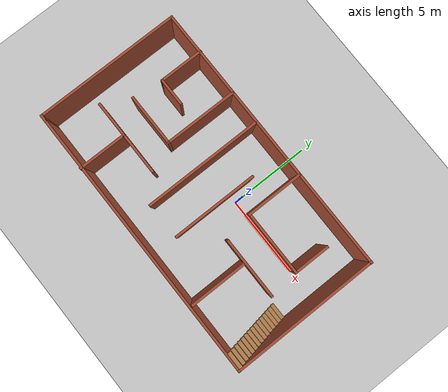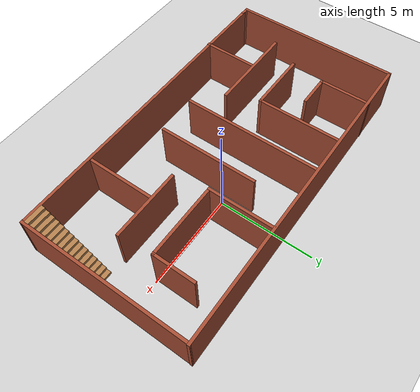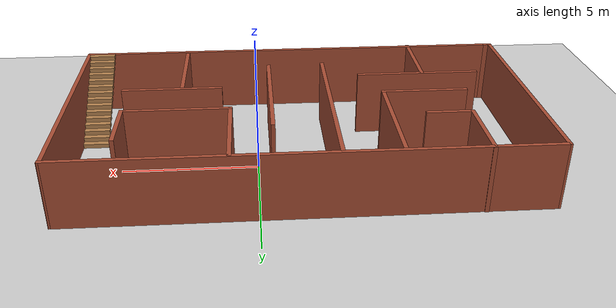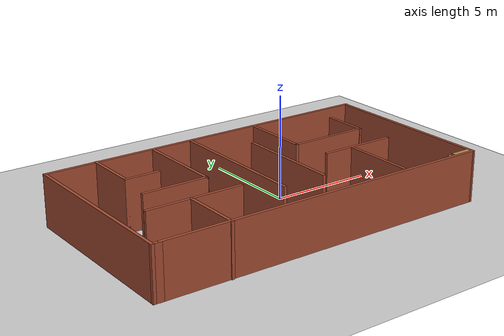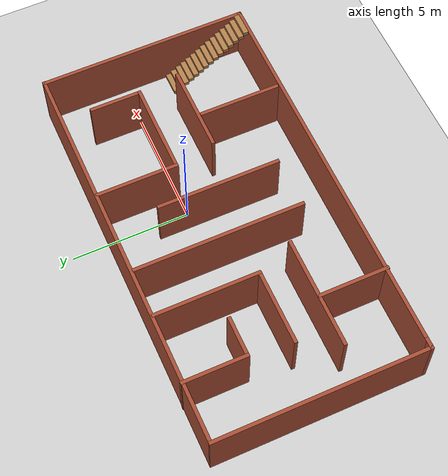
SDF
<sdf version="1.7">
 <world name="default">
  <light name="sun" type="directional">
   <pose>0 0 10 0 -0 0</pose>
   <diffuse>0.8 0.8 0.8 1</diffuse>
   <specular>0.2 0.2 0.2 1</specular>
   <attenuation>
    <range>1000</range>
    <constant>0.9</constant>
    <linear>0.01</linear>
    <quadratic>0.001</quadratic>
   </attenuation>
   <direction>-0.5 0.1 -0.9</direction>
   <spot><inner_angle>0</inner_angle><outer_angle>0</outer_angle><falloff>0</falloff></spot>
  </light>
  <model name="ground_plane">
   <static>1</static>
   <link name="link">
    <collision name="collision">
     <geometry><plane><normal>0 0 1</normal><size>100 100</size></plane></geometry>
     <surface>
      <contact><collide_bitmask>65535</collide_bitmask></contact>
      <friction><ode><mu>100</mu><mu2>50</mu2></ode></friction>
     </surface>
    </collision>
    <visual name="visual">
     <cast_shadows>0</cast_shadows>
     <geometry><plane><normal>0 0 1</normal><size>100 100</size></plane></geometry>
     <material>
      <script><uri>file://media/materials/scripts/gazebo.material</uri><name>Gazebo/Grey</name></script>
     </material>
    </visual>
   </link>
  </model>
  <gravity>0 0 -9.8</gravity>
  <magnetic_field>6e-06 2.3e-05 -4.2e-05</magnetic_field>
  <atmosphere type="adiabatic"/>
  <physics type="ode">
   <max_step_size>0.001</max_step_size>
   <real_time_factor>1</real_time_factor>
   <real_time_update_rate>1000</real_time_update_rate>
  </physics>
  <scene><ambient>0.4 0.4 0.4 1</ambient><background>0.7 0.7 0.7 1</background><shadows>1</shadows></scene>
  <spherical_coordinates>
   <surface_model>EARTH_WGS84</surface_model>
   <latitude_deg>0</latitude_deg>
   <longitude_deg>0</longitude_deg>
   <elevation>0</elevation>
   <heading_deg>0</heading_deg>
  </spherical_coordinates>
  <model name="my_wall.wourlds">
   <pose>-1.61776 -1.0325 0 0 -0 0</pose>
   <link name="Stairs_0">
    <visual name="Stairs_0_Visual_0">
     <pose>7.91561 -0.975412 0.083333 0 -0 0</pose>
     <geometry><box><size>1 0.233333 0.166667</size></box></geometry>
     <material>
      <script><uri>file://media/materials/scripts/gazebo.material</uri><name>Gazebo/Wood</name></script>
      <ambient>1 1 1 1</ambient>
     </material>
     <meta><layer>0</layer></meta>
    </visual>
    <collision name="Stairs_0_Collision_0">
     <geometry><box><size>1 0.233333 0.166667</size></box></geometry>
     <pose>7.91561 -0.975412 0.083333 0 -0 0</pose>
    </collision>
    <visual name="Stairs_0_Visual_1">
     <pose>7.91561 -1.20874 0.25 0 -0 0</pose>
     <geometry><box><size>1 0.233333 0.166667</size></box></geometry>
     <material>
      <script><uri>file://media/materials/scripts/gazebo.material</uri><name>Gazebo/Wood</name></script>
      <ambient>1 1 1 1</ambient>
     </material>
     <meta><layer>0</layer></meta>
    </visual>
    <collision name="Stairs_0_Collision_1">
     <geometry><box><size>1 0.233333 0.166667</size></box></geometry>
     <pose>7.91561 -1.20874 0.25 0 -0 0</pose>
    </collision>
    <visual name="Stairs_0_Visual_2">
     <pose>7.91561 -1.44208 0.416667 0 -0 0</pose>
     <geometry><box><size>1 0.233333 0.166667</size></box></geometry>
     <material>
      <script><uri>file://media/materials/scripts/gazebo.material</uri><name>Gazebo/Wood</name></script>
      <ambient>1 1 1 1</ambient>
     </material>
     <meta><layer>0</layer></meta>
    </visual>
    <collision name="Stairs_0_Collision_2">
     <geometry><box><size>1 0.233333 0.166667</size></box></geometry>
     <pose>7.91561 -1.44208 0.416667 0 -0 0</pose>
    </collision>
    <visual name="Stairs_0_Visual_3">
     <pose>7.91561 -1.67541 0.583333 0 -0 0</pose>
     <geometry><box><size>1 0.233333 0.166667</size></box></geometry>
     <material>
      <script><uri>file://media/materials/scripts/gazebo.material</uri><name>Gazebo/Wood</name></script>
      <ambient>1 1 1 1</ambient>
     </material>
     <meta><layer>0</layer></meta>
    </visual>
    <collision name="Stairs_0_Collision_3">
     <geometry><box><size>1 0.233333 0.166667</size></box></geometry>
     <pose>7.91561 -1.67541 0.583333 0 -0 0</pose>
    </collision>
    <visual name="Stairs_0_Visual_4">
     <pose>7.91561 -1.90875 0.75 0 -0 0</pose>
     <geometry><box><size>1 0.233333 0.166667</size></box></geometry>
     <material>
      <script><uri>file://media/materials/scripts/gazebo.material</uri><name>Gazebo/Wood</name></script>
      <ambient>1 1 1 1</ambient>
     </material>
     <meta><layer>0</layer></meta>
    </visual>
    <collision name="Stairs_0_Collision_4">
     <geometry><box><size>1 0.233333 0.166667</size></box></geometry>
     <pose>7.91561 -1.90875 0.75 0 -0 0</pose>
    </collision>
    <visual name="Stairs_0_Visual_5">
     <pose>7.91561 -2.14208 0.916667 0 -0 0</pose>
     <geometry><box><size>1 0.233333 0.166667</size></box></geometry>
     <material>
      <script><uri>file://media/materials/scripts/gazebo.material</uri><name>Gazebo/Wood</name></script>
      <ambient>1 1 1 1</ambient>
     </material>
     <meta><layer>0</layer></meta>
    </visual>
    <collision name="Stairs_0_Collision_5">
     <geometry><box><size>1 0.233333 0.166667</size></box></geometry>
     <pose>7.91561 -2.14208 0.916667 0 -0 0</pose>
    </collision>
    <visual name="Stairs_0_Visual_6">
     <pose>7.91561 -2.37541 1.08333 0 -0 0</pose>
     <geometry><box><size>1 0.233333 0.166667</size></box></geometry>
     <material>
      <script><uri>file://media/materials/scripts/gazebo.material</uri><name>Gazebo/Wood</name></script>
      <ambient>1 1 1 1</ambient>
     </material>
     <meta><layer>0</layer></meta>
    </visual>
    <collision name="Stairs_0_Collision_6">
     <geometry><box><size>1 0.233333 0.166667</size></box></geometry>
     <pose>7.91561 -2.37541 1.08333 0 -0 0</pose>
    </collision>
    <visual name="Stairs_0_Visual_7">
     <pose>7.91561 -2.60875 1.25 0 -0 0</pose>
     <geometry><box><size>1 0.233333 0.166667</size></box></geometry>
     <material>
      <script><uri>file://media/materials/scripts/gazebo.material</uri><name>Gazebo/Wood</name></script>
      <ambient>1 1 1 1</ambient>
     </material>
     <meta><layer>0</layer></meta>
    </visual>
    <collision name="Stairs_0_Collision_7">
     <geometry><box><size>1 0.233333 0.166667</size></box></geometry>
     <pose>7.91561 -2.60875 1.25 0 -0 0</pose>
    </collision>
    <visual name="Stairs_0_Visual_8">
     <pose>7.91561 -2.84208 1.41667 0 -0 0</pose>
     <geometry><box><size>1 0.233333 0.166667</size></box></geometry>
     <material>
      <script><uri>file://media/materials/scripts/gazebo.material</uri><name>Gazebo/Wood</name></script>
      <ambient>1 1 1 1</ambient>
     </material>
     <meta><layer>0</layer></meta>
    </visual>
    <collision name="Stairs_0_Collision_8">
     <geometry><box><size>1 0.233333 0.166667</size></box></geometry>
     <pose>7.91561 -2.84208 1.41667 0 -0 0</pose>
    </collision>
    <visual name="Stairs_0_Visual_9">
     <pose>7.91561 -3.07541 1.58333 0 -0 0</pose>
     <geometry><box><size>1 0.233333 0.166667</size></box></geometry>
     <material>
      <script><uri>file://media/materials/scripts/gazebo.material</uri><name>Gazebo/Wood</name></script>
      <ambient>1 1 1 1</ambient>
     </material>
     <meta><layer>0</layer></meta>
    </visual>
    <collision name="Stairs_0_Collision_9">
     <geometry><box><size>1 0.233333 0.166667</size></box></geometry>
     <pose>7.91561 -3.07541 1.58333 0 -0 0</pose>
    </collision>
    <visual name="Stairs_0_Visual_10">
     <pose>7.91561 -3.30875 1.75 0 -0 0</pose>
     <geometry><box><size>1 0.233333 0.166667</size></box></geometry>
     <material>
      <script><uri>file://media/materials/scripts/gazebo.material</uri><name>Gazebo/Wood</name></script>
      <ambient>1 1 1 1</ambient>
     </material>
     <meta><layer>0</layer></meta>
    </visual>
    <collision name="Stairs_0_Collision_10">
     <geometry><box><size>1 0.233333 0.166667</size></box></geometry>
     <pose>7.91561 -3.30875 1.75 0 -0 0</pose>
    </collision>
    <visual name="Stairs_0_Visual_11">
     <pose>7.91561 -3.54208 1.91667 0 -0 0</pose>
     <geometry><box><size>1 0.233333 0.166667</size></box></geometry>
     <material>
      <script><uri>file://media/materials/scripts/gazebo.material</uri><name>Gazebo/Wood</name></script>
      <ambient>1 1 1 1</ambient>
     </material>
     <meta><layer>0</layer></meta>
    </visual>
    <collision name="Stairs_0_Collision_11">
     <geometry><box><size>1 0.233333 0.166667</size></box></geometry>
     <pose>7.91561 -3.54208 1.91667 0 -0 0</pose>
    </collision>
    <visual name="Stairs_0_Visual_12">
     <pose>7.91561 -3.77541 2.08333 0 -0 0</pose>
     <geometry><box><size>1 0.233333 0.166667</size></box></geometry>
     <material>
      <script><uri>file://media/materials/scripts/gazebo.material</uri><name>Gazebo/Wood</name></script>
      <ambient>1 1 1 1</ambient>
     </material>
     <meta><layer>0</layer></meta>
    </visual>
    <collision name="Stairs_0_Collision_12">
     <geometry><box><size>1 0.233333 0.166667</size></box></geometry>
     <pose>7.91561 -3.77541 2.08333 0 -0 0</pose>
    </collision>
    <visual name="Stairs_0_Visual_13">
     <pose>7.91561 -4.00875 2.25 0 -0 0</pose>
     <geometry><box><size>1 0.233333 0.166667</size></box></geometry>
     <material>
      <script><uri>file://media/materials/scripts/gazebo.material</uri><name>Gazebo/Wood</name></script>
      <ambient>1 1 1 1</ambient>
     </material>
     <meta><layer>0</layer></meta>
    </visual>
    <collision name="Stairs_0_Collision_13">
     <geometry><box><size>1 0.233333 0.166667</size></box></geometry>
     <pose>7.91561 -4.00875 2.25 0 -0 0</pose>
    </collision>
    <visual name="Stairs_0_Visual_14">
     <pose>7.91561 -4.24208 2.41667 0 -0 0</pose>
     <geometry><box><size>1 0.233333 0.166667</size></box></geometry>
     <material>
      <script><uri>file://media/materials/scripts/gazebo.material</uri><name>Gazebo/Wood</name></script>
      <ambient>1 1 1 1</ambient>
     </material>
     <meta><layer>0</layer></meta>
    </visual>
    <collision name="Stairs_0_Collision_14">
     <geometry><box><size>1 0.233333 0.166667</size></box></geometry>
     <pose>7.91561 -4.24208 2.41667 0 -0 0</pose>
    </collision>
   </link>
   <link name="Wall_0">
    <collision name="Wall_0_Collision">
     <geometry><box><size>17 0.15 2.5</size></box></geometry>
     <pose>0 0 1.25 0 -0 0</pose>
    </collision>
    <visual name="Wall_0_Visual">
     <pose>0 0 1.25 0 -0 0</pose>
     <geometry><box><size>17 0.15 2.5</size></box></geometry>
     <material>
      <script><uri>file://media/materials/scripts/gazebo.material</uri><name>Gazebo/Bricks</name></script>
      <ambient>1 1 1 1</ambient>
     </material>
     <meta><layer>0</layer></meta>
    </visual>
    <pose>0.035504 4.43577 0 0 -0 0</pose>
   </link>
   <link name="Wall_1">
    <collision name="Wall_1_Collision">
     <geometry><box><size>9 0.15 2.5</size></box></geometry>
     <pose>0 0 1.25 0 -0 0</pose>
    </collision>
    <visual name="Wall_1_Visual">
     <pose>0 0 1.25 0 -0 0</pose>
     <geometry><box><size>9 0.15 2.5</size></box></geometry>
     <material>
      <script><uri>file://media/materials/scripts/gazebo.material</uri><name>Gazebo/Bricks</name></script>
      <ambient>1 1 1 1</ambient>
     </material>
     <meta><layer>0</layer></meta>
    </visual>
    <pose>8.4605 0.010768 0 0 -0 -1.56755</pose>
   </link>
   <link name="Wall_10">
    <collision name="Wall_10_Collision">
     <geometry><box><size>1.75 0.15 2.5</size></box></geometry>
     <pose>0 0 1.25 0 -0 0</pose>
    </collision>
    <visual name="Wall_10_Visual">
     <pose>0 0 1.25 0 -0 0</pose>
     <geometry><box><size>1.75 0.15 2.5</size></box></geometry>
     <material>
      <script><uri>file://media/materials/scripts/gazebo.material</uri><name>Gazebo/Bricks</name></script>
      <ambient>1 1 1 1</ambient>
     </material>
     <meta><layer>0</layer></meta>
    </visual>
    <pose>-5.19274 1.85929 0 0 -0 0</pose>
   </link>
   <link name="Wall_14">
    <collision name="Wall_14_Collision">
     <geometry><box><size>7.25 0.15 2.5</size></box></geometry>
     <pose>0 0 1.25 0 -0 0</pose>
    </collision>
    <visual name="Wall_14_Visual">
     <pose>0 0 1.25 0 -0 0</pose>
     <geometry><box><size>7.25 0.15 2.5</size></box></geometry>
     <material>
      <script><uri>file://media/materials/scripts/gazebo.material</uri><name>Gazebo/Bricks</name></script>
      <ambient>1 1 1 1</ambient>
     </material>
     <meta><layer>0</layer></meta>
    </visual>
    <pose>-1.06959 0.774174 0 0 -0 -1.5708</pose>
   </link>
   <link name="Wall_16">
    <collision name="Wall_16_Collision">
     <geometry><box><size>4.75 0.15 2.5</size></box></geometry>
     <pose>0 0 1.25 0 -0 0</pose>
    </collision>
    <visual name="Wall_16_Visual">
     <pose>0 0 1.25 0 -0 0</pose>
     <geometry><box><size>4.75 0.15 2.5</size></box></geometry>
     <material>
      <script><uri>file://media/materials/scripts/gazebo.material</uri><name>Gazebo/Bricks</name></script>
      <ambient>1 1 1 1</ambient>
     </material>
     <meta><layer>0</layer></meta>
    </visual>
    <pose>-4.73478 -1.58718 0 0 -0 0</pose>
   </link>
   <link name="Wall_18">
    <collision name="Wall_18_Collision">
     <geometry><box><size>3 0.15 2.5</size></box></geometry>
     <pose>0 0 1.25 0 -0 0</pose>
    </collision>
    <visual name="Wall_18_Visual">
     <pose>0 0 1.25 0 -0 0</pose>
     <geometry><box><size>3 0.15 2.5</size></box></geometry>
     <material>
      <script><uri>file://media/materials/scripts/gazebo.material</uri><name>Gazebo/Bricks</name></script>
      <ambient>1 1 1 1</ambient>
     </material>
     <meta><layer>0</layer></meta>
    </visual>
    <pose>-4.91207 -3.03429 0 0 -0 -1.5708</pose>
   </link>
   <link name="Wall_2">
    <collision name="Wall_2_Collision">
     <geometry><box><size>16.75 0.15 2.5</size></box></geometry>
     <pose>0 0 1.25 0 -0 0</pose>
    </collision>
    <visual name="Wall_2_Visual">
     <pose>0 0 1.25 0 -0 0</pose>
     <geometry><box><size>16.75 0.15 2.5</size></box></geometry>
     <material>
      <script><uri>file://media/materials/scripts/gazebo.material</uri><name>Gazebo/Bricks</name></script>
      <ambient>1 1 1 1</ambient>
     </material>
     <meta><layer>0</layer></meta>
    </visual>
    <pose>0.174879 -4.41423 0 0 -0 3.14159</pose>
   </link>
   <link name="Wall_20">
    <collision name="Wall_20_Collision">
     <geometry><box><size>5.25 0.15 2.5</size></box></geometry>
     <pose>0 0 1.25 0 -0 0</pose>
    </collision>
    <visual name="Wall_20_Visual">
     <pose>0 0 1.25 0 -0 0</pose>
     <geometry><box><size>5.25 0.15 2.5</size></box></geometry>
     <material>
      <script><uri>file://media/materials/scripts/gazebo.material</uri><name>Gazebo/Bricks</name></script>
      <ambient>1 1 1 1</ambient>
     </material>
     <meta><layer>0</layer></meta>
    </visual>
    <pose>1.09488 -0.158445 0 0 -0 -1.5708</pose>
   </link>
   <link name="Wall_22">
    <collision name="Wall_22_Collision">
     <geometry><box><size>3.5 0.15 2.5</size></box></geometry>
     <pose>0 0 1.25 0 -0 0</pose>
    </collision>
    <visual name="Wall_22_Visual">
     <pose>0 0 1.25 0 -0 0</pose>
     <geometry><box><size>3.5 0.15 2.5</size></box></geometry>
     <material>
      <script><uri>file://media/materials/scripts/gazebo.material</uri><name>Gazebo/Bricks</name></script>
      <ambient>1 1 1 1</ambient>
     </material>
     <meta><layer>0</layer></meta>
    </visual>
    <pose>2.56876 2.70695 0 0 -0 -1.5708</pose>
   </link>
   <link name="Wall_23">
    <collision name="Wall_23_Collision">
     <geometry><box><size>4 0.15 2.5</size></box></geometry>
     <pose>0 0 1.25 0 -0 0</pose>
    </collision>
    <visual name="Wall_23_Visual">
     <pose>0 0 1.25 0 -0 0</pose>
     <geometry><box><size>4 0.15 2.5</size></box></geometry>
     <material>
      <script><uri>file://media/materials/scripts/gazebo.material</uri><name>Gazebo/Bricks</name></script>
      <ambient>1 1 1 1</ambient>
     </material>
     <meta><layer>0</layer></meta>
    </visual>
    <pose>4.49376 1.03195 0 0 -0 0</pose>
   </link>
   <link name="Wall_24">
    <collision name="Wall_24_Collision">
     <geometry><box><size>2.25 0.15 2.5</size></box></geometry>
     <pose>0 0 1.25 0 -0 0</pose>
    </collision>
    <visual name="Wall_24_Visual">
     <pose>0 0 1.25 0 -0 0</pose>
     <geometry><box><size>2.25 0.15 2.5</size></box></geometry>
     <material>
      <script><uri>file://media/materials/scripts/gazebo.material</uri><name>Gazebo/Bricks</name></script>
      <ambient>1 1 1 1</ambient>
     </material>
     <meta><layer>0</layer></meta>
    </visual>
    <pose>6.41876 2.08195 0 0 -0 1.5708</pose>
   </link>
   <link name="Wall_26">
    <collision name="Wall_26_Collision">
     <geometry><box><size>3.75 0.15 2.5</size></box></geometry>
     <pose>0 0 1.25 0 -0 0</pose>
    </collision>
    <visual name="Wall_26_Visual">
     <pose>0 0 1.25 0 -0 0</pose>
     <geometry><box><size>3.75 0.15 2.5</size></box></geometry>
     <material>
      <script><uri>file://media/materials/scripts/gazebo.material</uri><name>Gazebo/Bricks</name></script>
      <ambient>1 1 1 1</ambient>
     </material>
     <meta><layer>0</layer></meta>
    </visual>
    <pose>4.77561 -0.729143 0 0 -0 0</pose>
   </link>
   <link name="Wall_28">
    <collision name="Wall_28_Collision">
     <geometry><box><size>3.5 0.15 2.5</size></box></geometry>
     <pose>0 0 1.25 0 -0 0</pose>
    </collision>
    <visual name="Wall_28_Visual">
     <pose>0 0 1.25 0 -0 0</pose>
     <geometry><box><size>3.5 0.15 2.5</size></box></geometry>
     <material>
      <script><uri>file://media/materials/scripts/gazebo.material</uri><name>Gazebo/Bricks</name></script>
      <ambient>1 1 1 1</ambient>
     </material>
     <meta><layer>0</layer></meta>
    </visual>
    <pose>4.3996 -2.55671 0 0 -0 -1.5708</pose>
   </link>
   <link name="Wall_3">
    <collision name="Wall_3_Collision">
     <geometry><box><size>0.5 0.15 2.5</size></box></geometry>
     <pose>0 0 1.25 0 -0 0</pose>
    </collision>
    <visual name="Wall_3_Visual">
     <pose>0 0 1.25 0 -0 0</pose>
     <geometry><box><size>0.5 0.15 2.5</size></box></geometry>
     <material>
      <script><uri>file://media/materials/scripts/gazebo.material</uri><name>Gazebo/Bricks</name></script>
      <ambient>1 1 1 1</ambient>
     </material>
     <meta><layer>0</layer></meta>
    </visual>
    <pose>-8.30012 -4.41423 0 0 -0 3.14159</pose>
   </link>
   <link name="Wall_4">
    <collision name="Wall_4_Collision">
     <geometry><box><size>9 0.15 2.5</size></box></geometry>
     <pose>0 0 1.25 0 -0 0</pose>
    </collision>
    <visual name="Wall_4_Visual">
     <pose>0 0 1.25 0 -0 0</pose>
     <geometry><box><size>9 0.15 2.5</size></box></geometry>
     <material>
      <script><uri>file://media/materials/scripts/gazebo.material</uri><name>Gazebo/Bricks</name></script>
      <ambient>1 1 1 1</ambient>
     </material>
     <meta><layer>0</layer></meta>
    </visual>
    <pose>-8.47512 0.010768 0 0 -0 1.5708</pose>
   </link>
   <link name="Wall_6">
    <collision name="Wall_6_Collision">
     <geometry><box><size>4.5 0.15 2.5</size></box></geometry>
     <pose>0 0 1.25 0 -0 0</pose>
    </collision>
    <visual name="Wall_6_Visual">
     <pose>0 0 1.25 0 -0 0</pose>
     <geometry><box><size>4.5 0.15 2.5</size></box></geometry>
     <material>
      <script><uri>file://media/materials/scripts/gazebo.material</uri><name>Gazebo/Bricks</name></script>
      <ambient>1 1 1 1</ambient>
     </material>
     <meta><layer>0</layer></meta>
    </visual>
    <pose>-3.10862 2.20738 0 0 -0 -1.5708</pose>
   </link>
   <link name="Wall_7">
    <collision name="Wall_7_Collision">
     <geometry><box><size>3.25 0.15 2.5</size></box></geometry>
     <pose>0 0 1.25 0 -0 0</pose>
    </collision>
    <visual name="Wall_7_Visual">
     <pose>0 0 1.25 0 -0 0</pose>
     <geometry><box><size>3.25 0.15 2.5</size></box></geometry>
     <material>
      <script><uri>file://media/materials/scripts/gazebo.material</uri><name>Gazebo/Bricks</name></script>
      <ambient>1 1 1 1</ambient>
     </material>
     <meta><layer>0</layer></meta>
    </visual>
    <pose>-4.65862 0.032383 0 0 -0 3.14159</pose>
   </link>
   <link name="Wall_9">
    <collision name="Wall_9_Collision">
     <geometry><box><size>2.75 0.15 2.5</size></box></geometry>
     <pose>0 0 1.25 0 -0 0</pose>
    </collision>
    <visual name="Wall_9_Visual">
     <pose>0 0 1.25 0 -0 0</pose>
     <geometry><box><size>2.75 0.15 2.5</size></box></geometry>
     <material>
      <script><uri>file://media/materials/scripts/gazebo.material</uri><name>Gazebo/Bricks</name></script>
      <ambient>1 1 1 1</ambient>
     </material>
     <meta><layer>0</layer></meta>
    </visual>
    <pose>-5.99274 3.15929 0 0 -0 -1.5708</pose>
   </link>
   <static>1</static>
  </model>
 </world>
</sdf>
